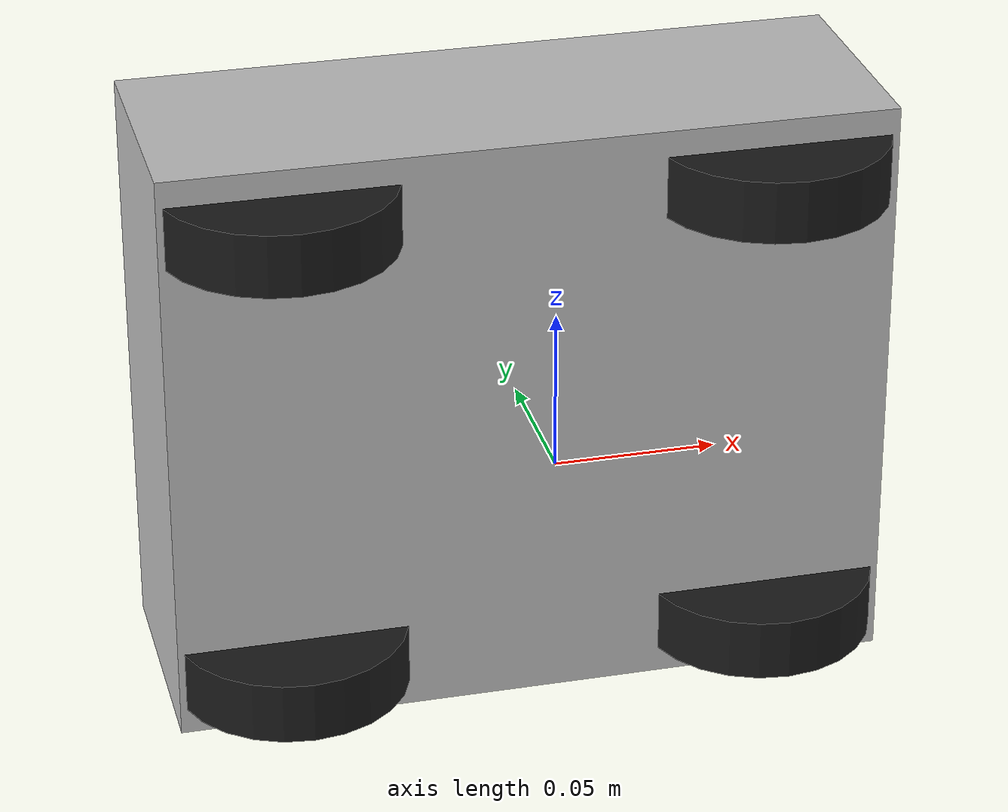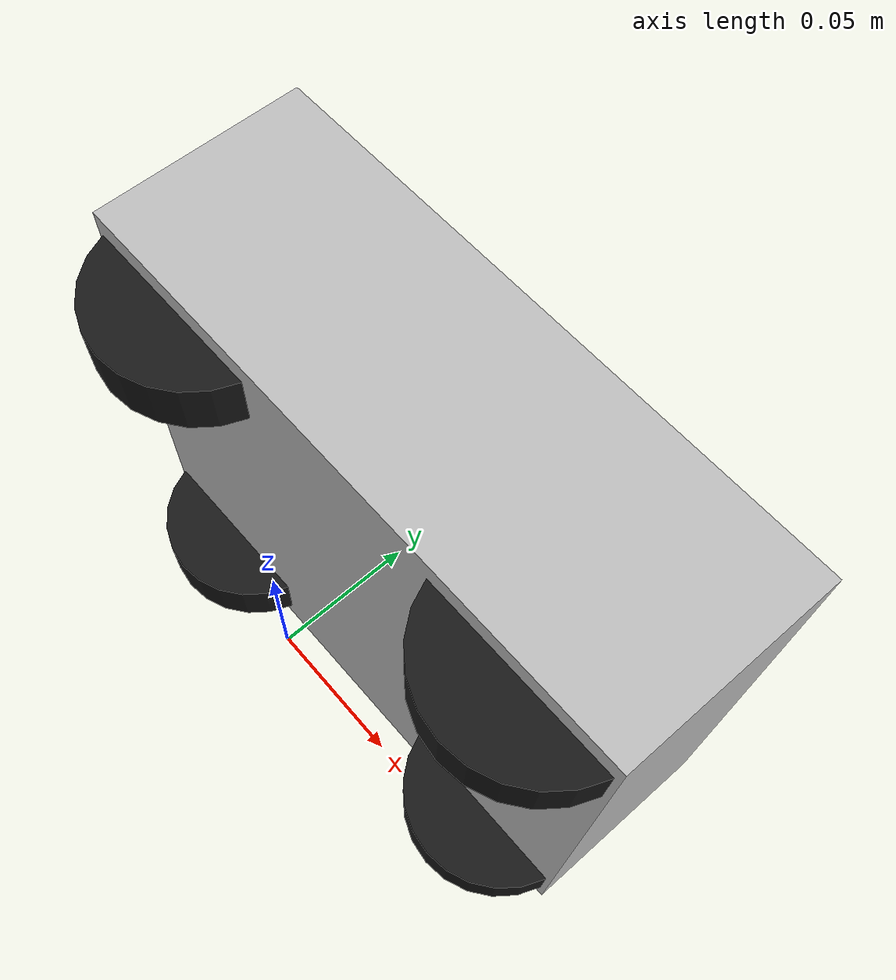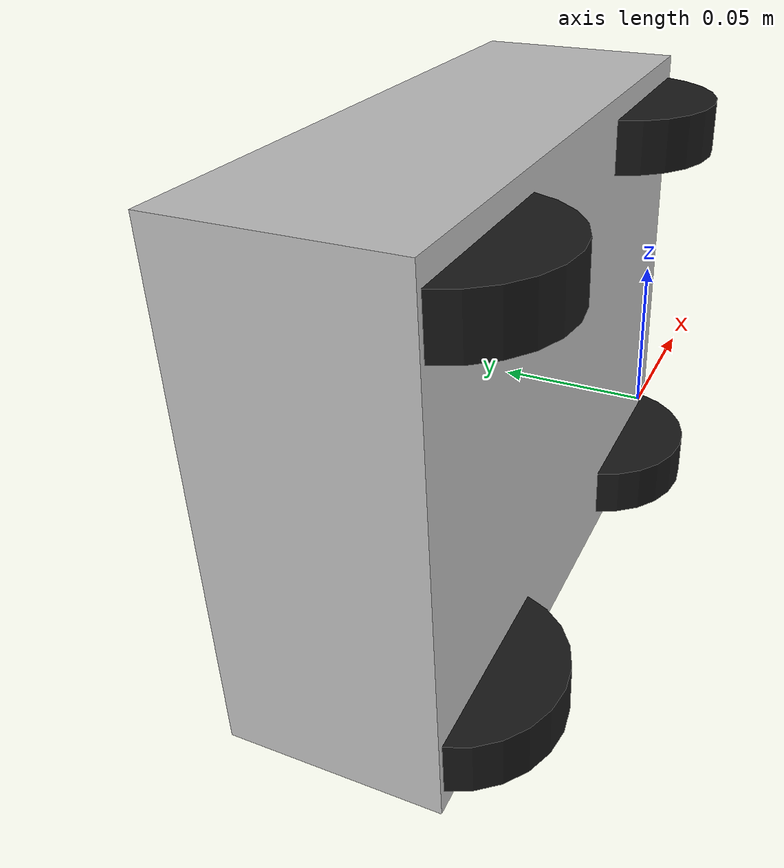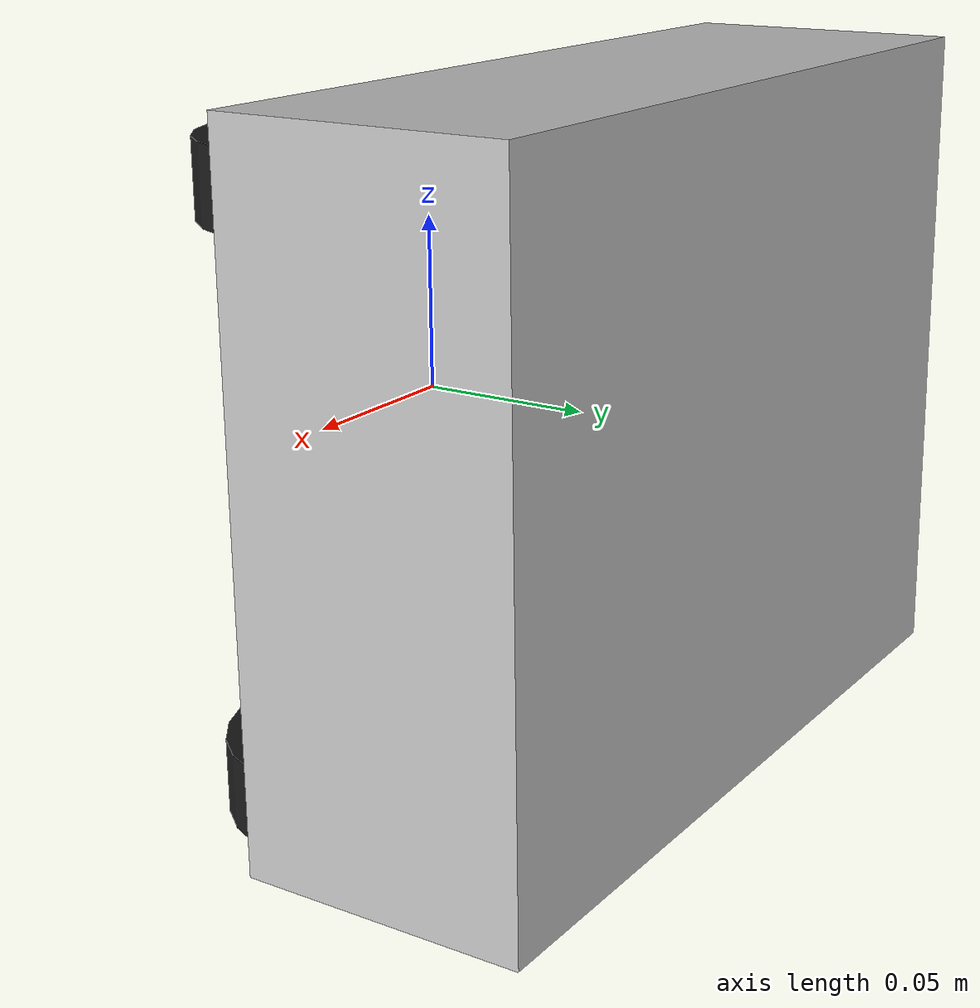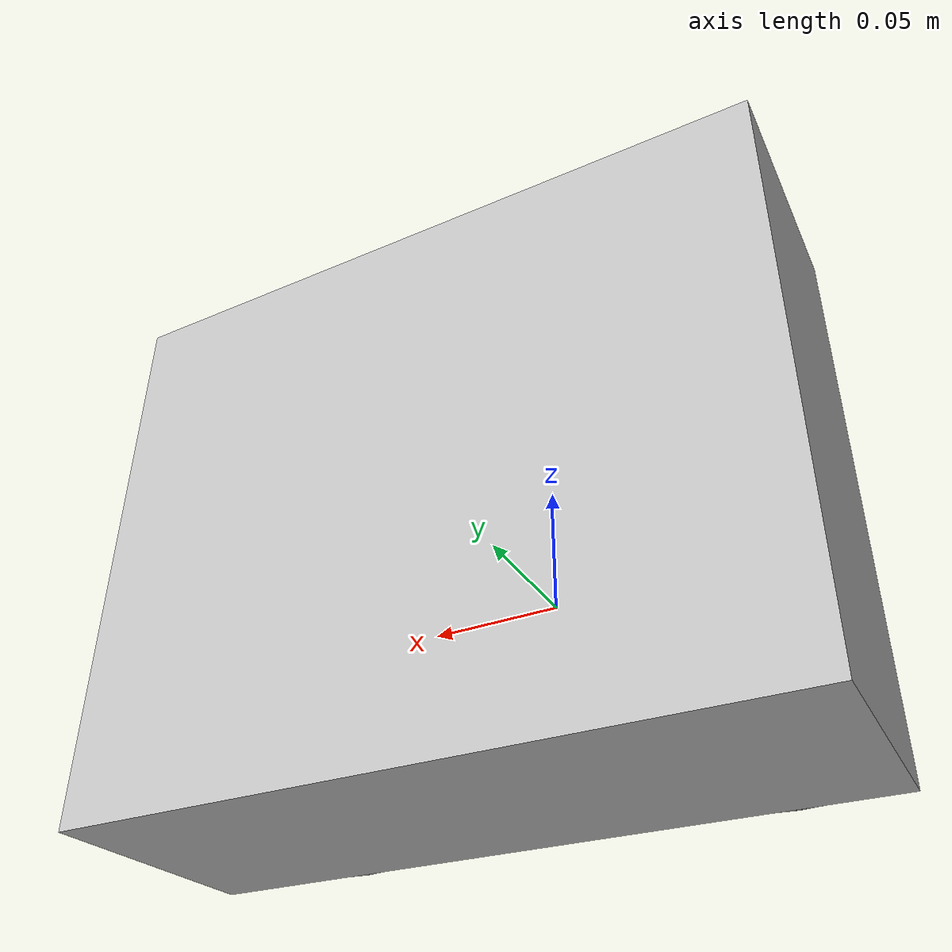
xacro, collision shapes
<?xml version="1.0"?>
<robot xmlns:xacro="http://www.ros.org/wiki/xacro" name="cobra">

  <!-- Robot parameters - loaded from robot_params.yaml -->
  <xacro:arg name="robot_params_file" default="$(find cobra_bringup)/config/robot_params.yaml"/>

  <!-- Load parameters from YAML file -->
  <xacro:property name="body_mass" value="2.375"/>
  <xacro:property name="body_length" value="0.23"/>
  <xacro:property name="body_width" value="0.08"/>
  <xacro:property name="body_height" value="0.19"/>

  <xacro:property name="wheel_radius" value="0.03725"/>
  <xacro:property name="wheel_width" value="0.020"/>
  <xacro:property name="wheel_mass" value="0.236"/>

  <!-- Wheel anchor positions (X Y Z) - distance between left and right wheels 153mm, between front and rear 154mm -->
  <xacro:property name="left_front_anchor" value="0.077 0.035 0.0765"/>
  <xacro:property name="right_front_anchor" value="0.077 0.035 -0.0765"/>
  <xacro:property name="left_rear_anchor" value="-0.077 0.035 0.0765"/>
  <xacro:property name="right_rear_anchor" value="-0.077 0.035 -0.0765"/>

  <!-- Base link (robot body) -->
  <link name="base_link">
    <visual>
      <origin xyz="0 0.03 0" rpy="0 0 0"/>
      <geometry>
        <mesh filename="meshes/robot_body.stl" scale="0.001 0.001 0.001"/>
      </geometry>
      <material name="body_material">
        <color rgba="0.75 0.75 0.75 1.0"/>
      </material>
    </visual>

    <collision>
      <origin xyz="0 0.065 0" rpy="0 0 0"/>
      <geometry>
        <box size="${body_length} ${body_width} ${body_height}"/>
      </geometry>
    </collision>

    <inertial>
      <origin xyz="0 0 0" rpy="0 0 0"/>
      <mass value="${body_mass}"/>
      <inertia ixx="0.1" ixy="0" ixz="0" iyy="0.1" iyz="0" izz="0.1"/>
    </inertial>
  </link>

  <!-- Left front wheel -->
  <link name="left_front_wheel">
    <visual>
      <origin xyz="0 0 0" rpy="1.5708 0 0"/>
      <geometry>
        <mesh filename="meshes/wheel_cobra.stl" scale="0.001 0.001 0.001"/>
      </geometry>
      <material name="wheel_material">
        <color rgba="0.1 0.1 0.1 1.0"/>
      </material>
    </visual>

    <collision>
      <origin xyz="0 0 0" rpy="0 0 0"/>
      <geometry>
        <cylinder radius="${wheel_radius}" length="${wheel_width}"/>
      </geometry>
    </collision>

    <inertial>
      <origin xyz="0 0 0" rpy="0 0 0"/>
      <mass value="${wheel_mass}"/>
      <inertia ixx="0.001" ixy="0" ixz="0" iyy="0.001" iyz="0" izz="0.001"/>
    </inertial>
  </link>

  <joint name="left_front_wheel_joint" type="continuous">
    <parent link="base_link"/>
    <child link="left_front_wheel"/>
    <origin xyz="${left_front_anchor}" rpy="0 0 0"/>
    <axis xyz="0 0 1"/>
  </joint>

  <!-- Left rear wheel -->
  <link name="left_rear_wheel">
    <visual>
      <origin xyz="0 0 0" rpy="1.5708 0 0"/>
      <geometry>
        <mesh filename="meshes/wheel_cobra.stl" scale="0.001 0.001 0.001"/>
      </geometry>
      <material name="wheel_material">
        <color rgba="0.1 0.1 0.1 1.0"/>
      </material>
    </visual>

    <collision>
      <origin xyz="0 0 0" rpy="0 0 0"/>
      <geometry>
        <cylinder radius="${wheel_radius}" length="${wheel_width}"/>
      </geometry>
    </collision>

    <inertial>
      <origin xyz="0 0 0" rpy="0 0 0"/>
      <mass value="${wheel_mass}"/>
      <inertia ixx="0.001" ixy="0" ixz="0" iyy="0.001" iyz="0" izz="0.001"/>
    </inertial>
  </link>

  <joint name="left_rear_wheel_joint" type="continuous">
    <parent link="base_link"/>
    <child link="left_rear_wheel"/>
    <origin xyz="${left_rear_anchor}" rpy="0 0 0"/>
    <axis xyz="0 0 1"/>
  </joint>

  <!-- Right front wheel -->
  <link name="right_front_wheel">
    <visual>
      <origin xyz="0 0 0" rpy="1.5708 0 0"/>
      <geometry>
        <mesh filename="meshes/wheel_cobra.stl" scale="0.001 0.001 0.001"/>
      </geometry>
      <material name="wheel_material">
        <color rgba="0.1 0.1 0.1 1.0"/>
      </material>
    </visual>

    <collision>
      <origin xyz="0 0 0" rpy="0 0 0"/>
      <geometry>
        <cylinder radius="${wheel_radius}" length="${wheel_width}"/>
      </geometry>
    </collision>

    <inertial>
      <origin xyz="0 0 0" rpy="0 0 0"/>
      <mass value="${wheel_mass}"/>
      <inertia ixx="0.001" ixy="0" ixz="0" iyy="0.001" iyz="0" izz="0.001"/>
    </inertial>
  </link>

  <joint name="right_front_wheel_joint" type="continuous">
    <parent link="base_link"/>
    <child link="right_front_wheel"/>
    <origin xyz="${right_front_anchor}" rpy="0 0 0"/>
    <axis xyz="0 0 1"/>
  </joint>

  <!-- Right rear wheel -->
  <link name="right_rear_wheel">
    <visual>
      <origin xyz="0 0 0" rpy="1.5708 0 0"/>
      <geometry>
        <mesh filename="meshes/wheel_cobra.stl" scale="0.001 0.001 0.001"/>
      </geometry>
      <material name="wheel_material">
        <color rgba="0.1 0.1 0.1 1.0"/>
      </material>
    </visual>

    <collision>
      <origin xyz="0 0 0" rpy="0 0 0"/>
      <geometry>
        <cylinder radius="${wheel_radius}" length="${wheel_width}"/>
      </geometry>
    </collision>

    <inertial>
      <origin xyz="0 0 0" rpy="0 0 0"/>
      <mass value="${wheel_mass}"/>
      <inertia ixx="0.001" ixy="0" ixz="0" iyy="0.001" iyz="0" izz="0.001"/>
    </inertial>
  </link>

  <joint name="right_rear_wheel_joint" type="continuous">
    <parent link="base_link"/>
    <child link="right_rear_wheel"/>
    <origin xyz="${right_rear_anchor}" rpy="0 0 0"/>
    <axis xyz="0 0 1"/>
  </joint>
</robot>
